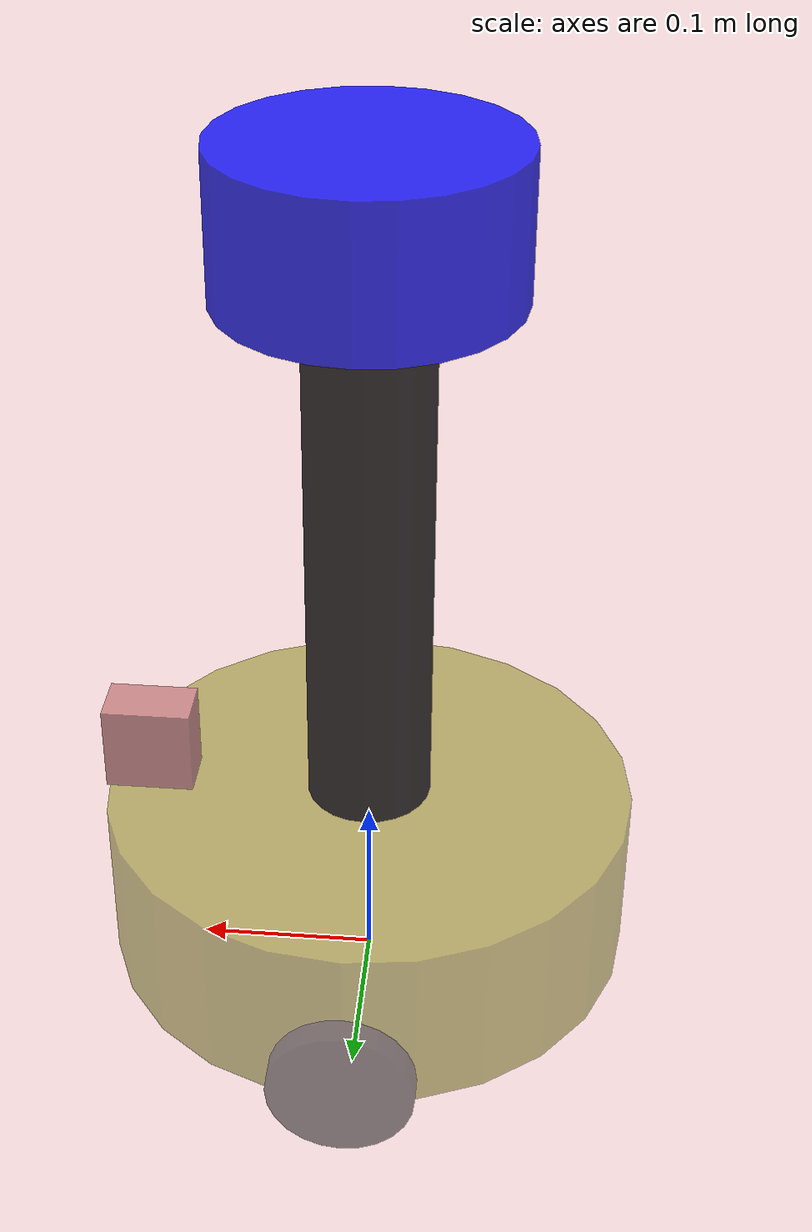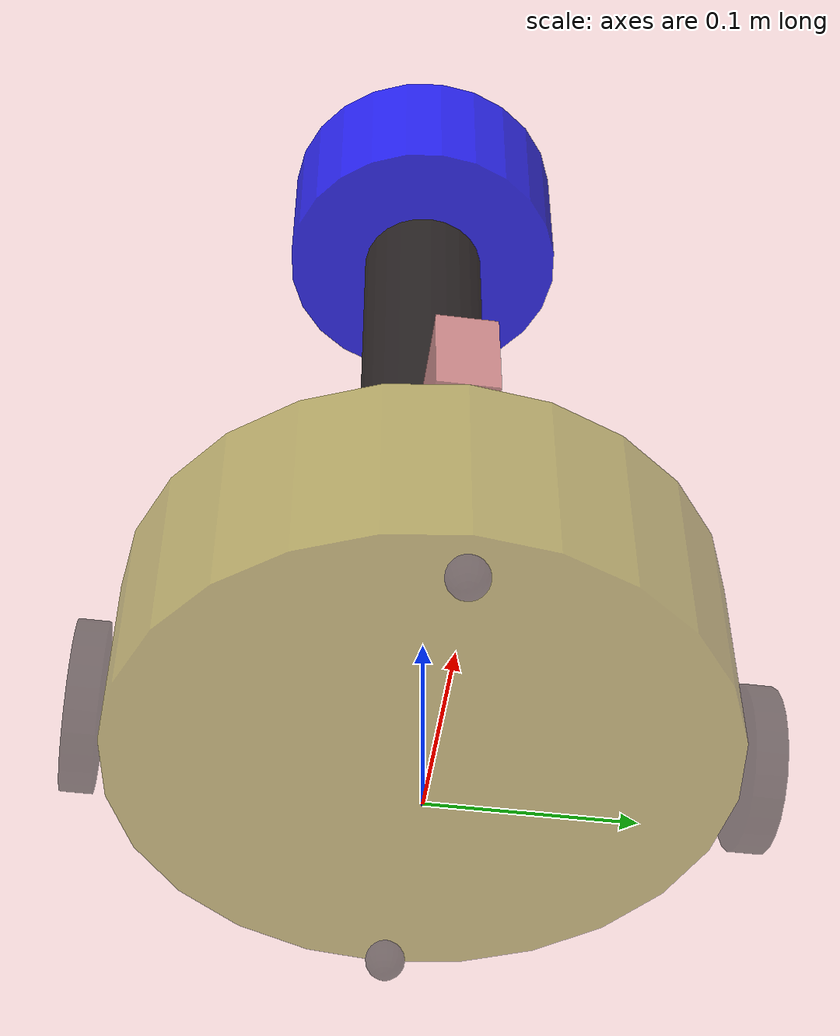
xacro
<robot name="mycar" xmlns:xacro="http://www.ros.org/wiki/xacro">
    <!-- 演示文件包含 -->
    <xacro:include filename="head.xacro" />
    <xacro:include filename="demo04_base.urdf.xacro" />
    <xacro:include filename="demo05_camera.urdf.xacro" />
    <xacro:include filename="demo06_laser.urdf.xacro" />
</robot>

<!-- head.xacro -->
<robot
    name="base" xmlns:xacro="http://wiki.ros.org/xacro">
    <!-- Macro for inertia matrix -->
    <xacro:macro name="sphere_inertial_matrix" params="m r">
        <inertial>
            <mass value="${m}"/>
            <inertia ixx="${2*m*r*r/5}" ixy="0" ixz="0" iyy="${2*m*r*r/5}" iyz="0" izz="${2*m*r*r/5}"/>
        </inertial>
    </xacro:macro>

    <xacro:macro name="cylinder_inertial_matrix" params="m r h">
        <inertial>
            <mass value="${m}"/>
            <inertia ixx="${m*(3*r*r+h*h)/12}" ixy="0" ixz="0" iyy="${m*(3*r*r+h*h)/12}" iyz="0" izz="${m*r*r/2}"/>
        </inertial>
    </xacro:macro>

    <xacro:macro name="Box_inertial_matrix" params="m l w h">
        <inertial>
            <mass value="${m}"/>
            <inertia ixx="${m*(h*h + l*l)/12}" ixy="0" ixz="0" iyy="${m*(w*w + l*l)/12}" iyz="0" izz="${m*(w*w + h*h)/12}"/>
        </inertial>
    </xacro:macro>
</robot>

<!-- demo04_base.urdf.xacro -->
<robot name="mycar" xmlns:xacro="http://www.ros.org/wiki/xacro">

    <xacro:property name="footprint_radius" value="0.001" />
    <link name="footprint">
        <visual>
            <geometry>
                <sphere radius="${footprint_radius}" />
            </geometry>
            <origin xyz="0 0 0" rpy="0 0 0" />
            <material name="foot_color">
                <color rgba="0 0 1 1" />
            </material>
        </visual>
    </link>

    <xacro:property name="base_radius" value="0.15" />
    <xacro:property name="base_length" value="0.1" />
    <xacro:property name="base_mass" value="2" />
    <xacro:property name="lidi" value="0.02" />
    <xacro:property name="baselink_z" value="${base_length/2 + lidi}" />
    <link name="base_link">
        <visual>
            <geometry>
                <cylinder radius="${base_radius}" length="${base_length}" />
            </geometry>
            <origin xyz="0 0 0" rpy="0 0 0" />
            <material name="base_color">
                <color rgba="0.5 0.5 0 0.5" />
            </material>
        </visual>
        <collision>
            <geometry>
                <cylinder radius="${base_radius}" length="${base_length}" />
            </geometry>
            <origin xyz="0 0 0" rpy="0 0 0" />
        </collision>
        <xacro:cylinder_inertial_matrix m="${base_mass}" r="${base_radius}" h="${base_length}" />

    </link>
    <gazebo reference="base_link">
        <material>Gazebo/Yellow</material>
    </gazebo>

    <joint name="foot2base" type="fixed">
        <parent link="footprint" />
        <child link="base_link" />
        <origin xyz="0 0 ${baselink_z}" rpy="0 0 0" />
    </joint>

    <xacro:property name="wheel_radius" value="0.04" />
    <xacro:property name="wheel_length" value="0.015" />
    <xacro:property name="wheel_mass" value="0.2" />
    <xacro:property name="wheel_joint_y" value="${base_radius + wheel_length/2}" />
    <xacro:property name="wheel_joint_z" value="${(base_length/2 + lidi - wheel_radius) * (-1)}" />

    <xacro:macro name="wheel_func" params="wheel_name flag">
        <link name="${wheel_name}_wheel">
            <visual>
                <geometry>
                    <cylinder radius="${wheel_radius}" length="${wheel_length}" />
                </geometry>
                <origin xyz="0 0 0" rpy="1.5708 0 0" />
                <material name="wheel_color">
                    <color rgba="0 0 0 0.5" />
                </material>
            </visual>
            <collision>
                <geometry>
                    <cylinder radius="${wheel_radius}" length="${wheel_length}" />
                </geometry>
                <origin xyz="0 0 0" rpy="1.5708 0 0" />
            </collision>
            <xacro:cylinder_inertial_matrix m="${wheel_mass}" r="${wheel_radius}" h="${wheel_length}" />
        </link>
        <gazebo reference="${wheel_name}_wheel">
            <material>Gazebo/Black</material>
        </gazebo>
        <joint name="${wheel_name}2base" type="continuous">
            <parent link="base_link" />
            <child link="${wheel_name}_wheel" />
            <origin xyz="0 ${flag * wheel_joint_y} ${wheel_joint_z}" />
            <axis xyz="0 1 0" />
        </joint>
    </xacro:macro>

    <xacro:wheel_func wheel_name="left" flag="1" />
    <xacro:wheel_func wheel_name="right" flag="-1" />

    <xacro:property name="small_wheel_radius" value="0.01" />
    <xacro:property name="small_wheel_mass" value="0.05" />
    <xacro:property name="small_wheel_joint_x" value="${base_radius * 0.9}" />
    <xacro:property name="small_wheel_joint_z" value="${(base_length/2 + lidi - small_wheel_radius) * (-1)}" />
    <xacro:macro name="small_wheel_func" params="small_wheel_name flag" >
        <link name="${small_wheel_name}_wheel">
            <visual>
                <geometry>
                    <sphere radius="${small_wheel_radius}"  />
                </geometry>
                <origin xyz="0 0 0" rpy="0 0 0" />
                <material name="wheel_color">
                    <color rgba="0 0 0 0.5" />
                </material>
            </visual>
            <collision>
                <geometry>
                    <sphere radius="${small_wheel_radius}"  />
                </geometry>
                <origin xyz="0 0 0" rpy="0 0 0" />
            </collision>
            <xacro:sphere_inertial_matrix m="${small_wheel_mass}" r="${small_wheel_radius}" />
        </link>
        <gazebo reference="${small_wheel_name}_wheel">
            <material>Gazebo/Red</material>
        </gazebo>
        <joint name="${small_wheel_name}2base" type="continuous">
            <parent link="base_link" />
            <child link="${small_wheel_name}_wheel" />
            <origin xyz="${flag * small_wheel_joint_x } 0 ${small_wheel_joint_z}" />
            <axis xyz="1 1 1" />
        </joint>
    </xacro:macro>
    <xacro:small_wheel_func small_wheel_name="front" flag="1" />
    <xacro:small_wheel_func small_wheel_name="back" flag="-1" />

</robot>

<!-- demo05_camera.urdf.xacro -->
<robot name="mycar" xmlns:xacro="http://www.ros.org/wiki/xacro">

    <xacro:property name="camera_length" value="0.05" />
    <xacro:property name="camera_width" value="0.03" />
    <xacro:property name="camera_height" value="0.05" />
    <xacro:property name="camera_mass" value="0.05" />

    <xacro:property name="camera_joint_x" value="${base_radius - camera_length/2 }" />
    <xacro:property name="camera_joint_y" value="0" />
    <xacro:property name="camera_joint_z" value="${base_length/2 + camera_height/2 }" />

    <link name="camera">
        <visual>
            <geometry>
                <box size="${camera_length} ${camera_width} ${camera_height}" />
            </geometry>
            <material name="camera_color">
                <color rgba="0.8 0.5 0.5 0.8" />
            </material>
        </visual>
        <collision>
            <geometry>
                <box size="${camera_length} ${camera_width} ${camera_height}" />
            </geometry>
        </collision>
        <xacro:Box_inertial_matrix m="${camera_mass}" l="${camera_length}" w="${camera_width}" h="${camera_height}" />
    </link>
    <gazebo reference="camera">
        <material>Gazebo/Black</material>
    </gazebo>
    <joint name="base2camera" type="fixed">
        <parent link="base_link" />
        <child link="camera" />
        <origin xyz="${camera_joint_x} ${camera_joint_y} ${camera_joint_z}" />
    </joint>
</robot>

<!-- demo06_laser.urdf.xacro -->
<robot name="mycar" xmlns:xacro="http://www.ros.org/wiki/xacro">

    <xacro:property name="support_radius" value="0.035" />
    <xacro:property name="support_length" value="0.3" />
    <xacro:property name="support_mass" value="0.3" />

    <xacro:property name="laser_raius" value="0.08" />
    <xacro:property name="laser_length" value="0.08" />
    <xacro:property name="laser_mass" value="0.2" />

    <xacro:property name="support_joint_z" value="${base_length/2 + support_length/2}" />
    <xacro:property name="laser_joint_z" value="${support_length/2 + laser_length/2 }" />

    <link name="support">
        <visual>
            <geometry>
                <cylinder radius="${support_radius}" length="${support_length}" />
            </geometry>
            <material name="support_color">
                <color rgba="0 0 0 0.8" />
            </material>
        </visual>
        <collision>
            <geometry>
                <cylinder radius="${support_radius}" length="${support_length}" />
            </geometry>
        </collision>
        <xacro:cylinder_inertial_matrix m="${support_mass}" r="${support_radius}" h="${support_length}" />
    </link>
    <gazebo reference="support">
        <material>Gazebo/Gray</material>
    </gazebo>
    <joint name="base2support" type="fixed">
        <parent link="base_link" />
        <child link="support" />
        <origin xyz="0 0 ${support_joint_z}" />
    </joint>

    <link name="laser">
        <visual>
            <geometry>
                <cylinder radius="${laser_raius}" length="${laser_length}" />
            </geometry>
            <material name="laser_color">
                <color rgba="0 0 1 0.8" />
            </material>
        </visual>
        <collision>
            <geometry>
                <cylinder radius="${laser_raius}" length="${laser_length}" />
            </geometry>
        </collision>
        <xacro:cylinder_inertial_matrix m="${laser_mass}" r="${laser_raius}" h="${laser_length}" />
    </link>
    <gazebo reference="laser">
        <material>Gazebo/Black</material>
    </gazebo>
    <joint name="base2laser" type="fixed">
        <parent link="support" />
        <child link="laser" />
        <origin xyz="0 0 ${laser_joint_z}" />
    </joint>
</robot>
